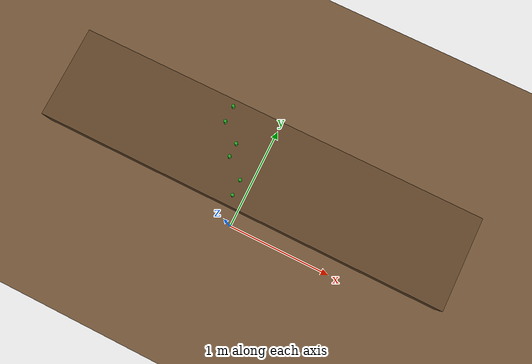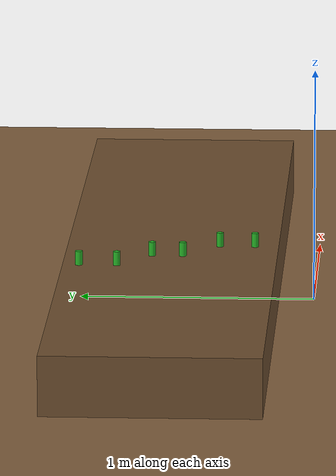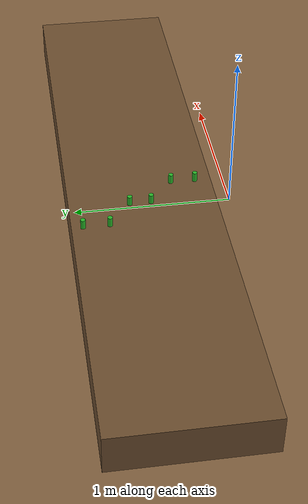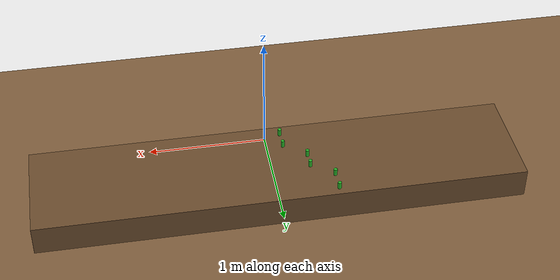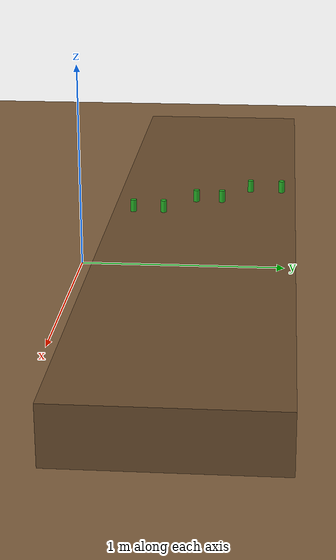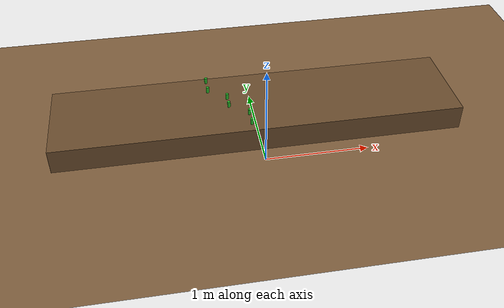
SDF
<sdf version="1.9">
 <world name="robot_stamp">
  <physics name="1ms" type="ignored">
   <max_step_size>0.001</max_step_size>
   <real_time_factor>1.0</real_time_factor>
  </physics>
  <plugin filename="ignition-gazebo-physics-system" name="ignition::gazebo::systems::Physics"/>
  <plugin filename="ignition-gazebo-scene-broadcaster-system" name="ignition::gazebo::systems::SceneBroadcaster"/>
  <plugin filename="ignition-gazebo-user-commands-system" name="ignition::gazebo::systems::UserCommands"/>
  <light type="directional" name="sun">
   <cast_shadows>false</cast_shadows>
   <pose>0 0 10 0 0 0</pose>
   <diffuse>1 1 1 1</diffuse>
   <specular>0.3 0.3 0.3 1</specular>
   <direction>-0.4 0.4 -0.85</direction>
  </light>
  <model name="furrow_floor">
   <static>true</static>
   <link name="link">
    <collision name="c">
     <geometry><plane><normal>0 0 1</normal><size>100 100</size></plane></geometry>
     <surface><friction><ode><mu>1.0</mu><mu2>1.0</mu2></ode></friction></surface>
    </collision>
    <visual name="v">
     <geometry><plane><normal>0 0 1</normal><size>100 100</size></plane></geometry>
     <material><ambient>0.3 0.22 0.14 1</ambient><diffuse>0.5 0.37 0.24 1</diffuse></material>
    </visual>
   </link>
  </model>
  <model name="bed">
   <static>true</static>
   <pose>0 0.600 0.125 0 0 0</pose>
   <link name="link">
    <collision name="c"><geometry><box><size>4.00 0.90 0.25</size></box></geometry></collision>
    <visual name="v">
     <geometry><box><size>4.00 0.90 0.25</size></box></geometry>
     <material><ambient>0.25 0.17 0.10 1</ambient><diffuse>0.42 0.30 0.18 1</diffuse></material>
    </visual>
   </link>
  </model>
  <model name="weed_0">
   <static>true</static>
   <pose>-0.09 0.25 0.28 0 0 0</pose>
   <link name="l">
    <visual name="v">
     <geometry><cylinder><radius>0.015</radius><length>0.06</length></cylinder></geometry>
     <material><ambient>0.1 0.5 0.1 1</ambient><diffuse>0.15 0.7 0.15 1</diffuse></material>
    </visual>
   </link>
  </model>
  <model name="weed_1">
   <static>true</static>
   <pose>-0.09 0.40 0.28 0 0 0</pose>
   <link name="l">
    <visual name="v">
     <geometry><cylinder><radius>0.015</radius><length>0.06</length></cylinder></geometry>
     <material><ambient>0.1 0.5 0.1 1</ambient><diffuse>0.15 0.7 0.15 1</diffuse></material>
    </visual>
   </link>
  </model>
  <model name="weed_2">
   <static>true</static>
   <pose>-0.27 0.55 0.28 0 0 0</pose>
   <link name="l">
    <visual name="v">
     <geometry><cylinder><radius>0.015</radius><length>0.06</length></cylinder></geometry>
     <material><ambient>0.1 0.5 0.1 1</ambient><diffuse>0.15 0.7 0.15 1</diffuse></material>
    </visual>
   </link>
  </model>
  <model name="weed_3">
   <static>true</static>
   <pose>-0.27 0.68 0.28 0 0 0</pose>
   <link name="l">
    <visual name="v">
     <geometry><cylinder><radius>0.015</radius><length>0.06</length></cylinder></geometry>
     <material><ambient>0.1 0.5 0.1 1</ambient><diffuse>0.15 0.7 0.15 1</diffuse></material>
    </visual>
   </link>
  </model>
  <model name="weed_4">
   <static>true</static>
   <pose>-0.45 0.82 0.28 0 0 0</pose>
   <link name="l">
    <visual name="v">
     <geometry><cylinder><radius>0.015</radius><length>0.06</length></cylinder></geometry>
     <material><ambient>0.1 0.5 0.1 1</ambient><diffuse>0.15 0.7 0.15 1</diffuse></material>
    </visual>
   </link>
  </model>
  <model name="weed_5">
   <static>true</static>
   <pose>-0.45 0.98 0.28 0 0 0</pose>
   <link name="l">
    <visual name="v">
     <geometry><cylinder><radius>0.015</radius><length>0.06</length></cylinder></geometry>
     <material><ambient>0.1 0.5 0.1 1</ambient><diffuse>0.15 0.7 0.15 1</diffuse></material>
    </visual>
   </link>
  </model>
 </world>
</sdf>
